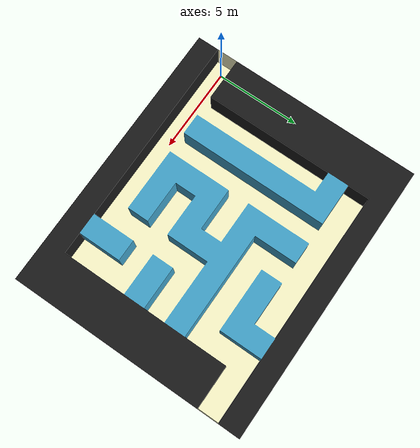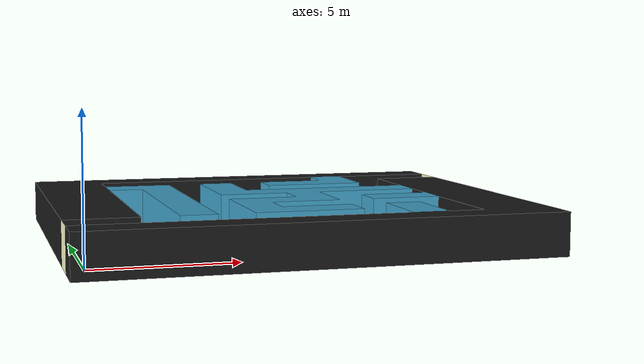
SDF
<sdf version='1.5'>
  <!-- Draw Model -->
  <model name="mazev3">
    <static>true</static>
    <link name="mazev3">
      <collision name="collision">
        <geometry>
          <mesh>
            <uri>model://turtlebot3_maze2/mazev3/mazev3.stl</uri>
          </mesh>
        </geometry>
      </collision>

      <visual name="visual">
        <geometry>
          <mesh>
            <uri>model://turtlebot3_maze2/mazev3/mazev3.dae</uri>
          </mesh>
        </geometry>
      </visual>
    </link>
  </model>
</sdf>
